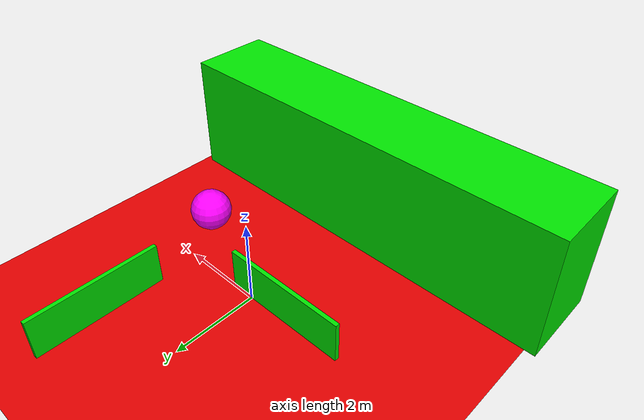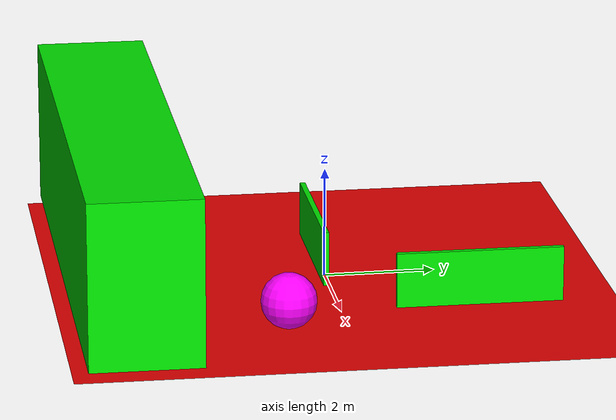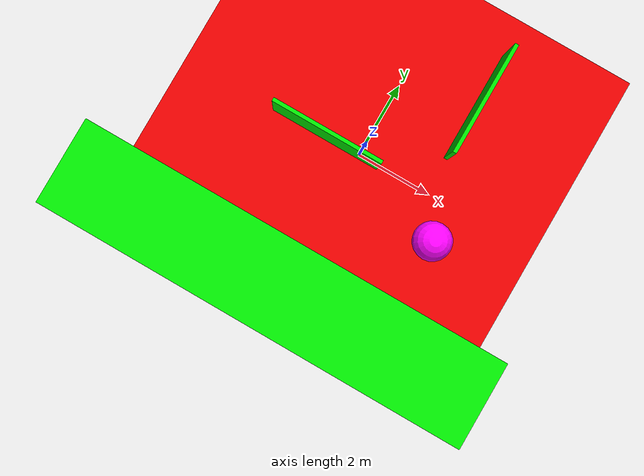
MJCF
<mujoco>
  <worldbody>
    <light diffuse=".5 .5 .5" pos="0 0 3" dir="0 0 -1" />
    <geom type="plane" size="5 5 1.110223E-16" rgba=".9 0 0 1" />
    <body pos="1.925448 2.500068 0.5">
      <geom type="box" size="0.05 1.5 0.5" euler="0 0 0" rgba="0 .9 0 1" />
    </body>
    <body pos="-0.934 -0.053 0.488">
      <geom type="box" size="1.5 0.05 0.5" euler="0 0 0" rgba="0 .9 0 1" />
    </body>
    <body pos="-0.2571106 -3.730738 1.566098" name="Ant1_arm1">
      <geom type="box" size="5 1 1.5" euler="0 0 0" rgba="0 .9 0 1" />
    </body>
    <body pos="2.59132 -1.015115 0.4474216">
      <geom type="sphere" size="0.5 0.5 0.5" euler="0 0 0" rgba="255 0 1 1" />
    </body>
  </worldbody>
</mujoco>
